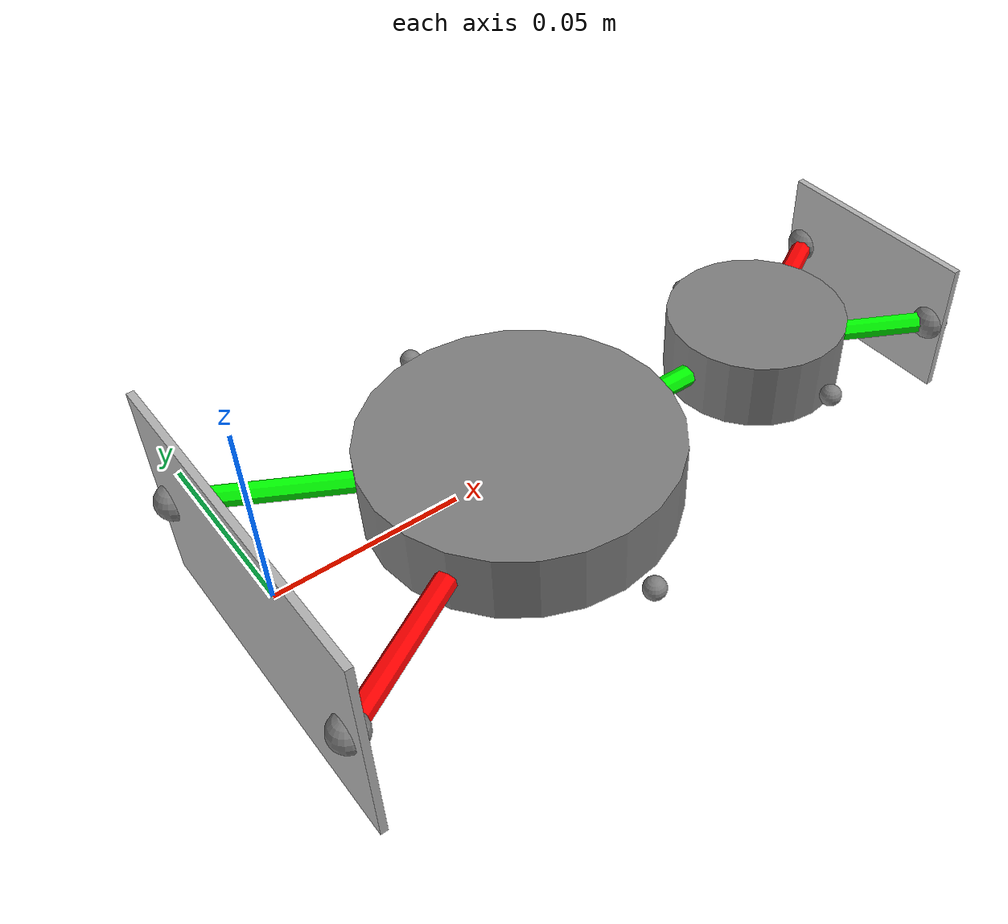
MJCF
<?xml version='1.0' encoding='UTF-8'?>
<mujoco>

    <option timestep="1e-4"/>
    <option gravity="0 0 -9.8"/>

    <asset>
        <texture type="skybox" builtin="gradient" rgb1="1 1 1" rgb2="0.5 0.5 0.5" width="265" height="256"/>
        <texture name="grid" type="2d" builtin="checker" rgb1="0.1 0.1 0.1" rgb2="0.6 0.6 0.6" width="300" height="300"/>
        <material name="grid" texture="grid" texrepeat="10 10" reflectance="0.2"/>
    </asset>

    <worldbody>
        <light pos="0 0 5" dir="0 0 -1"/>
        <body name="base" pos="-0.005 0 0">
            <geom type="box" size="0.001 0.05 0.03" rgba=".7 .7 .7 1"/>
            <site name="s1_base" pos="0 0.042 0" group="2"/>
            <site name="s2_base" pos="0 -0.042 0" group="2"/>

            <body name="body_block1" pos="0.075 0 0">
                <geom name="block1" type="cylinder" size="0.042 0.01"/>

                <body name="t1_block1_body" pos="0 0 0">
                    <joint name="t1_block1_joint" type="slide" axis="1 0 0" limited="false"/>
                    <joint type="slide" axis="0 1 0" limited="false"/>
                    <geom type="sphere" size="0.002" rgba="1 0 0 1"/>
                    <site name="t1_block1" size="0.003" group="3"/>
                </body>

                <body name="t2_block1_body" pos="0 0 0">
                    <joint name="t2_block1_joint" type="slide" axis="1 0 0" limited="false"/>
                    <joint type="slide" axis="0 1 0" limited="false"/>
                    <geom type="sphere" size="0.002" rgba="0 1 0 1"/>
                    <site name="t2_block1" size="0.003" group="3"/>
                </body>

                <site name="s1_b1" pos="0 0.052 0" size="0.003" group="2"/>
                <site name="s2_b1" pos="0 -0.052 0" size="0.003" group="2"/>

                <body name="body_block2" pos="0.081 0 0">
                    <joint name="block2_joint_y" type="slide" axis="0 1 0" limited="false" damping="0.1" range="-0.1 0.1"/>
                    <joint name="block2_joint_x" type="slide" axis="1 0 0" limited="false" damping="0.1" range="-0.1 0.1"/>
                    <geom name="block2" type="cylinder" size="0.025 0.01"/>

                    <body name="t1_block2_body" pos="0 0 0">
                        <joint name="t1_block2_joint" type="slide" axis="1 0 0" limited="false"/>
                        <joint type="slide" axis="0 1 0" limited="false"/>
                        <geom type="sphere" size="0.001" rgba="0 0 1 1"/>
                        <site name="t1_block2" size="0.003" group="3"/>
                    </body>

                    <body name="t2_block2_body" pos="0 0 0">
                        <joint name="t2_block2_joint" type="slide" axis="1 0 0" limited="false"/>
                        <joint type="slide" axis="0 1 0" limited="false"/>
                        <geom type="sphere" size="0.001" rgba="1 1 0 1"/>
                        <site name="t2_block2" size="0.003" group="3"/>
                    </body>

                    <site name="s1_b2" pos="0 -0.03 0" size="0.003" group="2"/>
                    <site name="s2_b2" pos="0 0.03 0" size="0.003" group="2"/>

                    <body name="load" pos="0.046 0 0">
                        <geom type="box" size="0.001 0.03 0.02" rgba=".7 .7 .7 1"/>
                        <site name="s1_load" pos="0 -0.025 0" group="2"/>
                        <site name="s2_load" pos="0 0.025 0" group="2"/>
                    </body>
                </body>
            </body>
        </body>
    </worldbody>

    <tendon>
        <spatial range="0 .2" limited="false" width="0.003" rgba="0 1 0 1">
            <site site="s1_base"/>
            <geom geom="block1" sidesite="s1_b1"/>
            <site site="t1_block1"/>
            <site site="t1_block2"/>
            <geom geom="block2" sidesite="s1_b2"/>
            <site site="s1_load"/>
        </spatial>

        <spatial range="0 .2" limited="false" width="0.003" rgba="1 0 0 1">
            <site site="s2_base"/>
            <geom geom="block1" sidesite="s2_b1"/>
            <site site="t2_block1"/>
            <site site="t2_block2"/>
            <geom geom="block2" sidesite="s2_b2"/>
            <site site="s2_load"/>
        </spatial>
    </tendon>

        <actuator>
            <position joint="block2_joint_y" kp="1"/>
            <position joint="block2_joint_x" kp="1"/>
        </actuator>

        <sensor>
            <jointpos name="block2_x_pos" joint="block2_joint_x"/>
            <jointpos name="block2_y_pos" joint="block2_joint_y"/>

            <jointvel name="block2_x_vel" joint="block2_joint_x"/>
            <jointvel name="block2_y_vel" joint="block2_joint_y"/>
        </sensor>

</mujoco>
